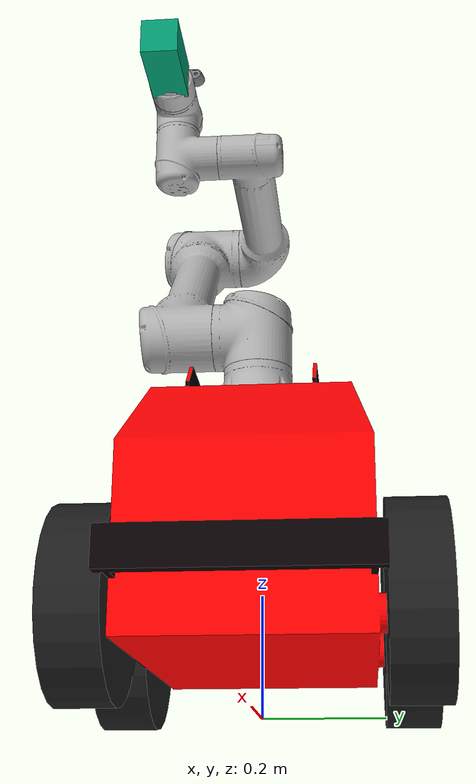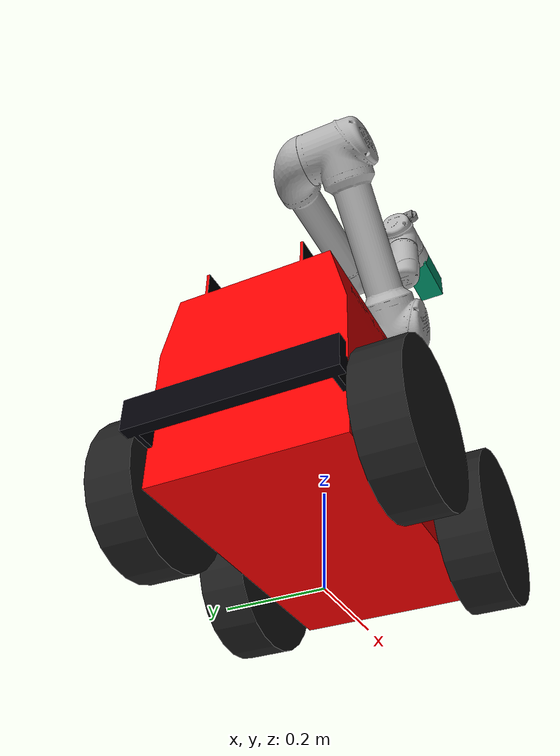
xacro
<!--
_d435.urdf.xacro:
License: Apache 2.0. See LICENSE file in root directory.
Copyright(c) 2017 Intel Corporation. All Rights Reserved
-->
<?xml version="1.0"?>
<robot xmlns:xacro="http://ros.org/wiki/xacro"
       name="atrv_ur5e" >

  <xacro:property name="ns" value="atrvjr/" />
  <xacro:include filename="$(find ur_e_gazebo)/controller/common.gazebo.xacro" />

  <xacro:include filename="$(find atrvjr_description)/urdf/atrvjr.xacro"/>
  <xacro:atrvjr armConnectionFrame="arm_base_frame" prefix="${ns}"/>

  <xacro:include filename="$(find ur_e_description)/urdf/ur5e.urdf.xacro"/>

  <xacro:include filename="$(find ur_e_description)/urdf/_d435.urdf.xacro" />

  <sensor_d435 parent="${ns}wrist_2_link" name="${ns}camera">
    <origin xyz="0 0 0.15" rpy="0 0 1.5"/>
  </sensor_d435>

  <xacro:ur5e_robot parent="${ns}arm_base_frame" prefix="${ns}" joint_limited="true"/>

</robot>

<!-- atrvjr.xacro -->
<robot xmlns:xacro="http://www.ros.org/wiki/xacro" name="atrvjr">
    <xacro:macro name="atrvjr" params="armConnectionFrame prefix">

    <xacro:property name="M_PI" value="3.14159"/>
    <!-- Robot parameters -->
    <xacro:property name="center_height" value="0.1525" />
    <!-- This is not including the bumpers -->
    <xacro:property name="chassis_length" value="0.64" />
    <!-- This is including the bumpers -->
    <xacro:property name="chassis_length_bumpers" value="0.78" />
    <!-- This is not including the wheels -->
    <xacro:property name="chassis_width" value="0.385" />
    <!-- This is not including equipment and racks on the top -->
    <xacro:property name="chassis_height" value="0.45" />

        <!-- wheel properties -->
    <xacro:property name="wheel_radius" value="0.155" />
    <xacro:property name="wheel_width" value="0.095" />
    <xacro:property name="wheel_long_offset" value="0.19 " /> <!-- distance from robot center to wheel center in x direction (forward direction) -->
    <xacro:property name="wheel_lat_offset" value="0.25" /> <!-- distance from robot center to wheel center in y direction (lateral direction) -->

    <xacro:include filename="$(find atrvjr_description)/urdf/atrvjr_wheels.xacro"/>

    <!-- mbot wheel generation based on imported macro -->
    <xacro:wheel prefix="${prefix}front" side="left" origin_x="${wheel_long_offset}" origin_y="${wheel_lat_offset}" parent="${prefix}base_link" >
        <origin xyz="0 0 0" rpy="0 0 0" />
    </xacro:wheel>

    <xacro:wheel prefix="${prefix}front" side="right" origin_x="${wheel_long_offset}" origin_y="-${wheel_lat_offset}" parent="${prefix}base_link" >
        <origin xyz="0 0 0" rpy="0 0 0" />
    </xacro:wheel>

    <xacro:wheel prefix="${prefix}rear" side="left" origin_x="-${wheel_long_offset}" origin_y="${wheel_lat_offset}" parent="${prefix}base_link" >
        <origin xyz="0 0 0" rpy="0 0 0" />
    </xacro:wheel>

    <xacro:wheel prefix="${prefix}rear" side="right" origin_x="-${wheel_long_offset}" origin_y="-${wheel_lat_offset}" parent="${prefix}base_link" >
        <origin xyz="0 0 0" rpy="0 0 0" />
    </xacro:wheel>

    <!-- links -->
    <!-- base_link -->
    <!-- The frame of the floor directly below the center_link and -->
    <!-- is needed for the navigation stack to work properly -->
    <link name="${prefix}base_link">

        <inertial>
            <origin xyz="0.0 0.0 0.2" rpy="0 0 0"/>
            <mass value="55"/>
            <inertia ixx="3.15" ixy="0.0" ixz="0.0" iyy="4.1" iyz="0.0" izz="4.47"/>
        </inertial>
    </link>

    <!-- center_link -->
    <!-- The link that is the origin of all of the components of the -->
    <!-- robot and should also represent the main chassis via inertial, -->
    <!-- visual, and geometry elements of the link -->
    <link name="${prefix}center_link">
        <visual>
            <geometry>
                <mesh filename="package://atrvjr_description/meshes/atrv_body.dae" />
            </geometry>
        </visual>
        <collision>
            <origin xyz="0.08 0.25 0.19" rpy="0 0 0"/>
            <geometry>
                <box size="${chassis_length} ${chassis_width+0.05} ${chassis_height-0.05}" />
            </geometry>
        </collision>
    </link>

    <!-- base_link -> center_link -->
    <joint name="${prefix}base_link_joint" type="fixed">
        <origin xyz="-0.1 0.19 ${center_height-0.1}" rpy="1.57 0 0"/>
        <parent link="${prefix}base_link"/>
        <child link="${prefix}center_link"/>
    </joint>

     <!-- Arm Link -->
    <link name="${prefix}${armConnectionFrame}"/>

    <joint name="${prefix}$to_{armConnectionFrame}_joint" type="fixed">
        <origin xyz="0.09 0 0.47" rpy="0 0 0"/>
        <parent link="${prefix}base_link"/>
        <child link="${prefix}${armConnectionFrame}"/>
    </joint>

    <!-- Crossbow Imu Link -->
    <link name="${prefix}cbimu_frame"/>

    <joint name="${prefix}base_cbimu_joint" type="fixed">
        <origin xyz="0 0 0.267" rpy="0 ${M_PI} 0"/>
        <parent link="${prefix}base_link"/>
        <child link="${prefix}cbimu_frame"/>
    </joint>

        <!-- MPU Imu Link -->
    <link name="${prefix}mpuimu_frame"/>

    <joint name="${prefix}base_mpuimu_joint" type="fixed">
        <origin xyz="0 -0.1 0.55" rpy="0 0 0"/>
        <parent link="${prefix}base_link"/>
        <child link="${prefix}mpuimu_frame"/>
    </joint>

    <link name="${prefix}imu_link"/>

    <joint name="${prefix}imu_joint" type="fixed">
        <origin xyz="0.0 0.0 0.0" rpy="0 0 0"/>
        <parent link="${prefix}base_link"/>
        <child link="${prefix}imu_link"/>
    </joint>

    <link name="${prefix}novatel"/>

    <joint name="${prefix}novatel_joint" type="fixed">
        <origin xyz="-0.15 0.1 0.55" rpy="0 0 0"/>
        <parent link="${prefix}base_link"/>
        <child link="${prefix}novatel"/>
    </joint>

    <link name="${prefix}hokuyo"/>

    <joint name="${prefix}laser_joint" type="fixed">
        <origin xyz="0.37 0 0.135" rpy="${M_PI} 0 0"/>
        <parent link="${prefix}base_link" />
        <child link="${prefix}hokuyo" />
    </joint>

    </xacro:macro>
</robot>

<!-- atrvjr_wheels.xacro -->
<robot xmlns:xacro="http://wiki.ros.org/xacro" name="atrvjr" >

  <!-- wheel macro -->
  <xacro:macro name="wheel" params="prefix side origin_x origin_y *joint_pose parent">
    <!-- dummy link from which the real wheel will rotate from -->
    <link name="${prefix}_${side}_static">
      <inertial>
        <origin xyz="0 0 0" rpy="0 0 0"/>
        <mass value="0.01"/>
        <inertia
          ixx="0.0000288" ixy="0.0000001" ixz="0.000001"
          iyy="0.00004324" iyz="0.0000001"
          izz="0.0004130"/>
      </inertial>
    </link>

    <!-- to specify the position of the dummy link w.r.t. base link -->
    <joint name="${prefix}_${side}_static_joint" type="fixed">
      <parent link="${parent}"/>
      <child link="${prefix}_${side}_static" />
      <origin xyz="${origin_x} ${origin_y} ${wheel_radius}" rpy="0 0 0" />
    </joint>

    <!-- each wheel -->
    <link name="${prefix}_${side}_wheel_link">
      <visual>
        <origin xyz="0 0 0" rpy="${M_PI/2} 0 0"/>
        <geometry>
          <cylinder radius="${wheel_radius}" length="${wheel_width}"/>
        </geometry>
        <material name="black" />
      </visual>
      <collision>
        <origin xyz="0 0 0" rpy="${M_PI/2} 0 0"/>
        <geometry>
          <cylinder radius="${wheel_radius}" length="${wheel_width}"/>
        </geometry>
      </collision>
      <inertial>
        <origin xyz="0 0 0" rpy="0 0 0"/>
        <mass value="3"/>
        <inertia ixx="0.021" ixy="0.0" ixz="0.0" iyy="0.04" iyz="0.0" izz="0.021"/>
      </inertial>
    </link>

    <!-- wheel joints -->
    <joint name="${prefix}_${side}_wheel" type="continuous">
      <parent link="${prefix}_${side}_static"/>
      <child link="${prefix}_${side}_wheel_link" />
      <xacro:insert_block name="joint_pose" />
      <axis xyz="0 1 0" />
    </joint>

    <transmission name="${prefix}_wheel_trans">
      <type>transmission_interface/SimpleTransmission</type>
      <joint name="${prefix}_${side}_wheel">
        <hardwareInterface>hardware_interface/VelocityJointInterface</hardwareInterface>
      </joint>
      <actuator name="${prefix}_${side}_actuator">
        <mechanicalReduction>1</mechanicalReduction>
      </actuator>
    </transmission>

  </xacro:macro>

</robot>

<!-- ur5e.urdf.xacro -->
<robot xmlns:xacro="http://ros.org/wiki/xacro">

  <xacro:include filename="$(find ur_e_description)/urdf/ur.transmission.xacro" />
  <xacro:include filename="$(find ur_e_description)/urdf/ur.gazebo.xacro" />

  <xacro:macro name="cylinder_inertial" params="radius length mass *origin">
    <inertial>
      <mass value="${mass}" />
      <xacro:insert_block name="origin" />
      <inertia ixx="${0.0833333 * mass * (3 * radius * radius + length * length)}" ixy="0.0" ixz="0.0"
        iyy="${0.0833333 * mass * (3 * radius * radius + length * length)}" iyz="0.0"
        izz="${0.5 * mass * radius * radius}" />
    </inertial>
  </xacro:macro>

  <xacro:macro name="ur5e_robot" params="parent prefix joint_limited
     shoulder_pan_lower_limit:=${-pi}    shoulder_pan_upper_limit:=${pi}
     shoulder_lift_lower_limit:=${-pi}    shoulder_lift_upper_limit:=${pi}
     elbow_joint_lower_limit:=${-pi}    elbow_joint_upper_limit:=${pi}
     wrist_1_lower_limit:=${-pi}    wrist_1_upper_limit:=${pi}
     wrist_2_lower_limit:=${-pi}    wrist_2_upper_limit:=${pi}
     wrist_3_lower_limit:=${-pi}    wrist_3_upper_limit:=${pi}">

    <!-- Inertia parameters -->
    <xacro:property name="base_mass" value="4" />  <!-- This mass might be incorrect, but I think the total weight of a ur5e must be 20.7-->
    <xacro:property name="shoulder_mass" value="3.7000" />
    <xacro:property name="upper_arm_mass" value="8.3930" />
    <xacro:property name="forearm_mass" value="2.2750" />
    <xacro:property name="wrist_1_mass" value="1.2190" />
    <xacro:property name="wrist_2_mass" value="1.2190" />
    <xacro:property name="wrist_3_mass" value="0.1879" />

    <xacro:property name="shoulder_cog" value="0.0 0.00193 -0.02561" />
    <xacro:property name="upper_arm_cog" value="0.0 -0.024201 0.2125" />
    <xacro:property name="forearm_cog" value="0.0 0.0265 0.11993" />
    <xacro:property name="wrist_1_cog" value="0.0 0.110949 0.01634" />
    <xacro:property name="wrist_2_cog" value="0.0 0.0018 0.11099" />
    <xacro:property name="wrist_3_cog" value="0.0 0.001159 0.0" />

    <!-- Kinematic model -->
    <!-- Properties from urcontrol.conf -->
    <xacro:property name="d1" value="0.163" />
    <xacro:property name="a2" value="-0.425" />
    <xacro:property name="a3" value="-0.392" />
    <xacro:property name="d4" value="0.127" />
    <xacro:property name="d5" value="0.100" />
    <xacro:property name="d6" value="0.100" />

    <!-- Arbitrary offsets for shoulder/elbow joints -->
    <xacro:property name="shoulder_offset" value="0.138" />
    <xacro:property name="elbow_offset" value="-0.131" />

    <!-- link lengths used in model -->
    <xacro:property name="shoulder_height" value="${d1}" />
    <xacro:property name="upper_arm_length" value="${-a2}" />
    <xacro:property name="forearm_length" value="${-a3}" />
    <xacro:property name="wrist_1_length" value="${d4}" />
    <xacro:property name="wrist_2_length" value="${d5}" />
    <xacro:property name="wrist_3_length" value="${d6}" />
    <!--property name="shoulder_height" value="0.089159" /-->
    <!--property name="shoulder_offset" value="0.13585" /-->  <!-- shoulder_offset - elbow_offset + wrist_1_length = 0.10915 -->
    <!--property name="upper_arm_length" value="0.42500" /-->
    <!--property name="elbow_offset" value="0.1197" /-->       <!-- CAD measured -->
    <!--property name="forearm_length" value="0.39225" /-->
    <!--property name="wrist_1_length" value="0.093" /-->     <!-- CAD measured -->
    <!--property name="wrist_2_length" value="0.09465" /-->   <!-- In CAD this distance is 0.930, but in the spec it is 0.09465 -->
    <!--property name="wrist_3_length" value="0.0823" /-->

    <xacro:property name="shoulder_radius" value="0.060" />   <!-- manually measured -->
    <xacro:property name="upper_arm_radius" value="0.054" />  <!-- manually measured -->
    <xacro:property name="elbow_radius" value="0.060" />      <!-- manually measured -->
    <xacro:property name="forearm_radius" value="0.040" />    <!-- manually measured -->
    <xacro:property name="wrist_radius" value="0.045" />      <!-- manually measured -->

    <joint name="${prefix}fixed_joint" type="fixed">
      <parent link="${parent}" />
      <child link = "${prefix}arm_base_link" />
      <origin xyz="0.0 0.0 0.0" rpy="0.0 0.0 1.57" />
    </joint>

    <link name="${prefix}arm_base_link" >
      <visual>
        <geometry>
          <mesh filename="package://ur_e_description/meshes/ur5e/visual/base.dae" />
        </geometry>
        <material name="LightGrey">
          <color rgba="0.7 0.7 0.7 1.0"/>
        </material>
      </visual>
      <collision>
        <geometry>
          <mesh filename="package://ur_e_description/meshes/ur5e/collision/base.stl" />
        </geometry>
      </collision>
      <xacro:cylinder_inertial radius="0.06" length="0.05" mass="${base_mass}">
        <origin xyz="0.0 0.0 0.0" rpy="0 0 0" />
      </xacro:cylinder_inertial>
    </link>

    <joint name="${prefix}shoulder_pan_joint" type="revolute">
      <parent link="${prefix}arm_base_link" />
      <child link = "${prefix}shoulder_link" />
      <origin xyz="0.0 0.0 ${shoulder_height}" rpy="0.0 0.0 ${pi / 2}" />
      <axis xyz="0 0 1" />
      <xacro:unless value="${joint_limited}">
        <limit lower="${-2.0 * pi}" upper="${2.0 * pi}" effort="150.0" velocity="3.14"/>
      </xacro:unless>
      <xacro:if value="${joint_limited}">
        <limit lower="${shoulder_pan_lower_limit}" upper="${shoulder_pan_upper_limit}" effort="150.0" velocity="3.14"/>
      </xacro:if>
      <dynamics damping="0.0" friction="0.0"/>
    </joint>

    <link name="${prefix}shoulder_link">
      <visual>
        <geometry>
          <mesh filename="package://ur_e_description/meshes/ur5e/visual/shoulder.dae" />
        </geometry>
        <material name="LightGrey">
          <color rgba="0.7 0.7 0.7 1.0"/>
        </material>
      </visual>
      <collision>
        <geometry>
          <mesh filename="package://ur_e_description/meshes/ur5e/collision/shoulder.stl" />
        </geometry>
      </collision>
      <xacro:cylinder_inertial radius="0.06" length="0.15" mass="${shoulder_mass}">
        <origin xyz="0.0 0.0 0.0" rpy="0 0 0" />
      </xacro:cylinder_inertial>
    </link>

    <joint name="${prefix}shoulder_lift_joint" type="revolute">
      <parent link="${prefix}shoulder_link" />
      <child link = "${prefix}upper_arm_link" />
      <origin xyz="0.0 ${shoulder_offset} 0.0" rpy="0.0 ${pi / 4} 0.0" />
      <axis xyz="0 1 0" />
      <xacro:unless value="${joint_limited}">
        <limit lower="${-2.0 * pi}" upper="${2.0 * pi}" effort="150.0" velocity="3.14"/>
      </xacro:unless>
      <xacro:if value="${joint_limited}">
        <limit lower="${shoulder_lift_lower_limit}" upper="${shoulder_lift_upper_limit}" effort="150.0" velocity="3.14"/>
      </xacro:if>
      <dynamics damping="0.0" friction="0.0"/>
    </joint>

    <link name="${prefix}upper_arm_link">
      <visual>
        <geometry>
          <mesh filename="package://ur_e_description/meshes/ur5e/visual/upperarm.dae" />
        </geometry>
        <material name="LightGrey">
          <color rgba="0.7 0.7 0.7 1.0"/>
        </material>
      </visual>
      <collision>
        <geometry>
          <mesh filename="package://ur_e_description/meshes/ur5e/collision/upperarm.stl" />
        </geometry>
      </collision>
      <xacro:cylinder_inertial radius="0.06" length="0.56" mass="${upper_arm_mass}">
        <origin xyz="0.0 0.0 0.28" rpy="0 0 0" />
      </xacro:cylinder_inertial>
    </link>

    <joint name="${prefix}elbow_joint" type="revolute">
      <parent link="${prefix}upper_arm_link" />
      <child link = "${prefix}forearm_link" />
      <origin xyz="0.0 ${elbow_offset} ${upper_arm_length}" rpy="0.0 ${-3 * pi / 4} 0.0" />
      <axis xyz="0 1 0" />
      <xacro:unless value="${joint_limited}">
        <limit lower="${-pi}" upper="${pi}" effort="150.0" velocity="3.14"/>
      </xacro:unless>
      <xacro:if value="${joint_limited}">
        <limit lower="${elbow_joint_lower_limit}" upper="${elbow_joint_upper_limit}" effort="150.0" velocity="3.14"/>
      </xacro:if>
      <dynamics damping="0.0" friction="0.0"/>
    </joint>

    <link name="${prefix}forearm_link">
      <visual>
        <geometry>
          <mesh filename="package://ur_e_description/meshes/ur5e/visual/forearm.dae" />
        </geometry>
        <material name="LightGrey">
          <color rgba="0.7 0.7 0.7 1.0"/>
        </material>
      </visual>
      <collision>
        <geometry>
          <mesh filename="package://ur_e_description/meshes/ur5e/collision/forearm.stl" />
        </geometry>
      </collision>
      <xacro:cylinder_inertial radius="0.06" length="0.5" mass="${forearm_mass}">
        <origin xyz="0.0 0.0 0.25" rpy="0 0 0" />
      </xacro:cylinder_inertial>
    </link>

    <joint name="${prefix}wrist_1_joint" type="revolute">
      <parent link="${prefix}forearm_link" />
      <child link = "${prefix}wrist_1_link" />
      <origin xyz="0.0 0.0 ${forearm_length}" rpy="0.0 ${pi / 2} 0.0" />
      <axis xyz="0 1 0" />
      <xacro:unless value="${joint_limited}">
        <limit lower="${-2.0 * pi}" upper="${2.0 * pi}" effort="28.0" velocity="6.28"/>
      </xacro:unless>
      <xacro:if value="${joint_limited}">
        <limit lower="${wrist_1_lower_limit}" upper="${wrist_1_upper_limit}" effort="28.0" velocity="6.28"/>
      </xacro:if>
      <dynamics damping="0.0" friction="0.0"/>
    </joint>

    <link name="${prefix}wrist_1_link">
      <visual>
        <geometry>
          <mesh filename="package://ur_e_description/meshes/ur5e/visual/wrist1.dae" />
        </geometry>
        <material name="LightGrey">
          <color rgba="0.7 0.7 0.7 1.0"/>
        </material>
      </visual>
      <collision>
        <geometry>
          <mesh filename="package://ur_e_description/meshes/ur5e/collision/wrist1.stl" />
        </geometry>
      </collision>
      <xacro:cylinder_inertial radius="0.6" length="0.12" mass="${wrist_1_mass}">
        <origin xyz="0.0 0.0 0.0" rpy="0 0 0" />
      </xacro:cylinder_inertial>
    </link>

    <joint name="${prefix}wrist_2_joint" type="revolute">
      <parent link="${prefix}wrist_1_link" />
      <child link = "${prefix}wrist_2_link" />
      <origin xyz="0.0 ${wrist_1_length} 0.0" rpy="0.0 0.0 ${pi / 2}" />
      <axis xyz="0 0 1" />
      <xacro:unless value="${joint_limited}">
        <limit lower="${-2.0 * pi}" upper="${2.0 * pi}" effort="28.0" velocity="6.28"/>
      </xacro:unless>
      <xacro:if value="${joint_limited}">
        <limit lower="${wrist_2_lower_limit}" upper="${wrist_2_upper_limit}" effort="28.0" velocity="6.28"/>
      </xacro:if>
      <dynamics damping="0.0" friction="0.0"/>
    </joint>

    <link name="${prefix}wrist_2_link">
      <visual>
        <geometry>
          <mesh filename="package://ur_e_description/meshes/ur5e/visual/wrist2.dae" />
        </geometry>
        <material name="LightGrey">
          <color rgba="0.7 0.7 0.7 1.0"/>
        </material>
      </visual>
      <collision>
        <geometry>
          <mesh filename="package://ur_e_description/meshes/ur5e/collision/wrist2.stl" />
        </geometry>
      </collision>
      <xacro:cylinder_inertial radius="0.6" length="0.12" mass="${wrist_2_mass}">
        <origin xyz="0.0 0.0 0.0" rpy="0 0 0" />
      </xacro:cylinder_inertial>
    </link>

    <joint name="${prefix}cam_support_joint" type="fixed">
      <parent link="${prefix}wrist_2_link" />
      <child link = "${prefix}cam_support_link" />
      <origin xyz="0.0 -0.05 0.2" rpy="0.0 0.0 0.0" />
    </joint>

    <link name="${prefix}cam_support_link">
      <collision>
        <geometry>
          <box size="0.2 0.2 0.03"/>
        </geometry>
        <origin rpy="0 0 0" xyz="0 0 0"/>
      </collision>
    </link>

    <joint name="${prefix}wrist_3_joint" type="revolute">
      <parent link="${prefix}wrist_2_link" />
      <child link = "${prefix}wrist_3_link" />
      <origin xyz="0.0 0.0 ${wrist_2_length}" rpy="0.0 0.0 0.0" />
      <axis xyz="0 1 0" />
      <xacro:unless value="${joint_limited}">
        <limit lower="${-2.0 * pi}" upper="${2.0 * pi}" effort="28.0" velocity="6.28"/>
      </xacro:unless>
      <xacro:if value="${joint_limited}">
        <limit lower="${wrist_3_lower_limit}" upper="${wrist_3_upper_limit}" effort="28.0" velocity="6.28"/>
      </xacro:if>
      <dynamics damping="0.0" friction="0.0"/>
    </joint>

    <link name="${prefix}wrist_3_link">
      <visual>
        <geometry>
          <mesh filename="package://ur_e_description/meshes/ur5e/visual/wrist3.dae" />
        </geometry>
        <material name="LightGrey">
          <color rgba="0.7 0.7 0.7 1.0"/>
        </material>
      </visual>
      <collision>
        <geometry>
          <mesh filename="package://ur_e_description/meshes/ur5e/collision/wrist3.stl" />
        </geometry>
      </collision>
      <xacro:cylinder_inertial radius="0.6" length="0.12" mass="${wrist_3_mass}">
        <origin xyz="0.0 0.0 0.0" rpy="0 0 0" />
      </xacro:cylinder_inertial>
    </link>

    <joint name="${prefix}ee_fixed_joint" type="fixed">
      <parent link="${prefix}wrist_3_link" />
      <child link = "${prefix}ee_link" />
      <origin xyz="0.0 0.15 0.0" rpy="0.0 0.0 0.0" />
    </joint>

    <link name="${prefix}ee_link">
      <visual>
        <geometry>
          <box size="0.06 0.13 0.06"/>
        </geometry>
        <origin rpy="0 0 0" xyz="0 0 0"/>
      </visual>
      <collision>
        <geometry>
          <box size="0.06 0.13 0.06"/>
        </geometry>
        <origin rpy="0 0 0" xyz="0 0 0"/>
      </collision>
    </link>

    <xacro:ur_arm_transmission prefix="${prefix}" />
    <xacro:ur_arm_gazebo prefix="${prefix}" />

    <!-- Frame coincident with all-zeros TCP on UR controller -->
    <link name="${prefix}tool0"/>
    <joint name="${prefix}wrist_3_link-tool0_fixed_joint" type="fixed">
      <origin xyz="0 0 0" rpy="0 0 0"/>
      <parent link="${prefix}wrist_3_link"/>
      <child link="${prefix}tool0"/>
    </joint>

  </xacro:macro>
</robot>

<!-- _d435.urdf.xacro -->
<robot name="sensor_d435" xmlns:xacro="http://ros.org/wiki/xacro">
  <!--File includes-->
  <xacro:include filename="$(find ur_e_description)/urdf/_d435.gazebo.xacro"/>

  <xacro:macro name="sensor_d435" params="name:=camera topics_ns:=atrvjr/camera parent *origin">
    <xacro:property name="M_PI" value="3.1415926535897931" />

    <!-- The following values are approximate, and the camera node
     publishing TF values with actual calibrated camera extrinsic values -->
    <xacro:property name="d435_cam_depth_to_left_ir_offset" value="0.0"/>
    <xacro:property name="d435_cam_depth_to_right_ir_offset" value="-0.050"/>
    <xacro:property name="d435_cam_depth_to_color_offset" value="0.015"/>

    <!-- The following values model the aluminum peripherial case for the
  	D435 camera, with the camera joint represented by the actual
  	peripherial camera tripod mount -->
    <xacro:property name="d435_cam_width" value="0.090"/>
    <xacro:property name="d435_cam_height" value="0.025"/>
    <xacro:property name="d435_cam_depth" value="0.02505"/>
    <xacro:property name="d435_cam_mount_from_center_offset" value="0.0149"/>

    <!-- The following offset is relative the the physical D435 camera peripherial
  	camera tripod mount -->
    <xacro:property name="d435_cam_depth_px" value="${d435_cam_mount_from_center_offset}"/>
    <xacro:property name="d435_cam_depth_py" value="0.0175"/>
    <xacro:property name="d435_cam_depth_pz" value="${d435_cam_height/2}"/>

    <material name="${name}_aluminum">
	  <color rgba="0.5 0.5 0.5 1"/>
    </material>

    <!-- camera body, with origin at bottom screw mount -->
    <joint name="${name}_joint" type="fixed">
      <xacro:insert_block name="origin" />
      <parent link="${parent}"/>
      <child link="${name}_bottom_screw_frame" />
    </joint>
    <link name="${name}_bottom_screw_frame"/>

    <joint name="${name}_link_joint" type="fixed">
      <origin xyz="0 ${d435_cam_depth_py} ${d435_cam_depth_pz}" rpy="0 0 0"/>
      <parent link="${name}_bottom_screw_frame"/>
      <child link="${name}_link" />
    </joint>

    <link name="${name}_link">
      <visual>
      <origin xyz="${d435_cam_mount_from_center_offset} ${-d435_cam_depth_py} 0" rpy="${M_PI/2} 0 ${M_PI/2}"/>
        <geometry>
          <mesh filename="package://realsense2_description/meshes/d435.dae" />
        </geometry>
        <material name="${name}_aluminum"/>
      </visual>
      <collision>
        <origin xyz="0 ${-d435_cam_depth_py} 0" rpy="0 0 0"/>
        <geometry>
        <box size="${d435_cam_depth} ${d435_cam_width} ${d435_cam_height}"/>
        </geometry>
      </collision>
      <inertial>
        <!-- The following are not reliable values, and should not be used for modeling -->
        <mass value="0.564" />
        <origin xyz="0 0 0" />
        <inertia ixx="0.003881243" ixy="0.0" ixz="0.0" iyy="0.000498940" iyz="0.0" izz="0.003879257" />
      </inertial>
    </link>

    <!-- camera depth joints and links -->
    <joint name="${name}_depth_joint" type="fixed">
      <origin xyz="0 0 0" rpy="0 0 0"/>
      <parent link="${name}_link"/>
      <child link="${name}_depth_frame" />
    </joint>
    <link name="${name}_depth_frame"/>

    <joint name="${name}_depth_optical_joint" type="fixed">
      <origin xyz="0 0 0" rpy="${-M_PI/2} 0 ${-M_PI/2}" />
      <parent link="${name}_depth_frame" />
      <child link="${name}_depth_optical_frame" />
    </joint>
    <link name="${name}_depth_optical_frame"/>

    <!-- camera left IR joints and links -->
    <joint name="${name}_left_ir_joint" type="fixed">
      <origin xyz="0 ${d435_cam_depth_to_left_ir_offset} 0" rpy="0 0 0" />
      <parent link="${name}_depth_frame" />
      <child link="${name}_left_ir_frame" />
    </joint>
    <link name="${name}_left_ir_frame"/>

    <joint name="${name}_left_ir_optical_joint" type="fixed">
      <origin xyz="0 0 0" rpy="${-M_PI/2} 0 ${-M_PI/2}" />
      <parent link="${name}_left_ir_frame" />
      <child link="${name}_left_ir_optical_frame" />
    </joint>
    <link name="${name}_left_ir_optical_frame"/>

    <!-- camera right IR joints and links -->
    <joint name="${name}_right_ir_joint" type="fixed">
      <origin xyz="0 ${d435_cam_depth_to_right_ir_offset} 0" rpy="0 0 0" />
      <parent link="${name}_depth_frame" />
      <child link="${name}_right_ir_frame" />
    </joint>
    <link name="${name}_right_ir_frame"/>

    <joint name="${name}_right_ir_optical_joint" type="fixed">
      <origin xyz="0 0 0" rpy="${-M_PI/2} 0 ${-M_PI/2}" />
      <parent link="${name}_right_ir_frame" />
      <child link="${name}_right_ir_optical_frame" />
    </joint>
    <link name="${name}_right_ir_optical_frame"/>

    <!-- camera color joints and links -->
    <joint name="${name}_color_joint" type="fixed">
      <origin xyz="0 ${d435_cam_depth_to_color_offset} 0" rpy="0 0 0" />
      <parent link="${name}_depth_frame" />
      <child link="${name}_color_frame" />
    </joint>
    <link name="${name}_color_frame"/>

    <joint name="${name}_color_optical_joint" type="fixed">
      <origin xyz="0 0 0" rpy="${-M_PI/2} 0 ${-M_PI/2}" />
      <parent link="${name}_color_frame" />
      <child link="${name}_color_optical_frame" />
    </joint>
    <link name="${name}_color_optical_frame"/>

    <!-- Realsense Gazebo Plugin -->
    <xacro:gazebo_d435 camera_name="${name}" reference_link="${name}_link" topics_ns="${topics_ns}" depth_optical_frame="${name}_depth_optical_frame" color_optical_frame="${name}_color_optical_frame" infrared1_optical_frame="${name}_left_ir_optical_frame" infrared2_optical_frame="${name}_right_ir_optical_frame"/>

  </xacro:macro>
</robot>
